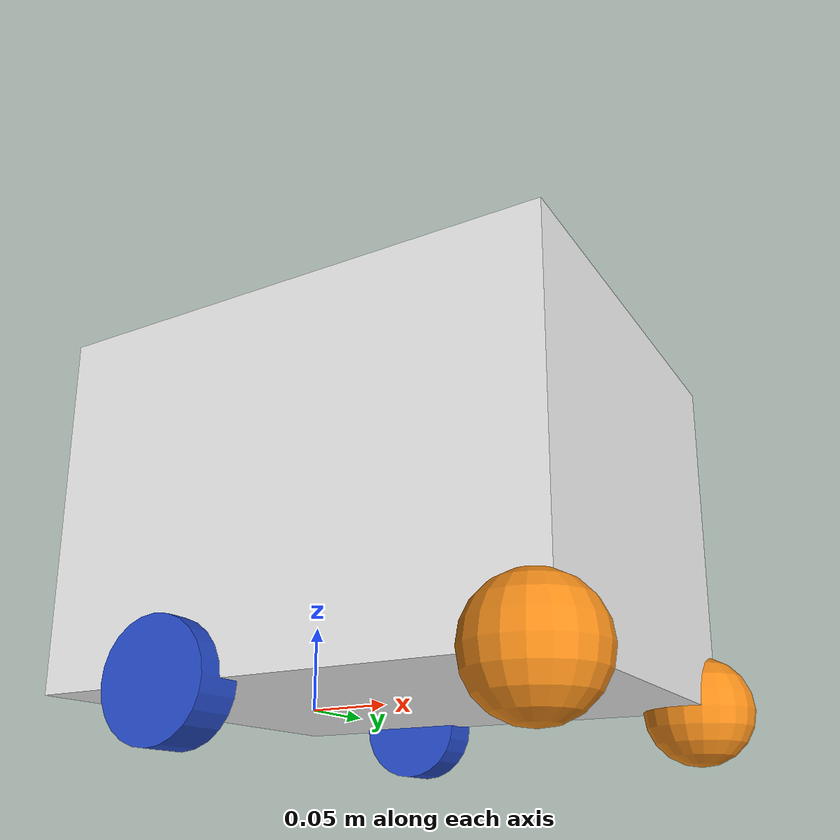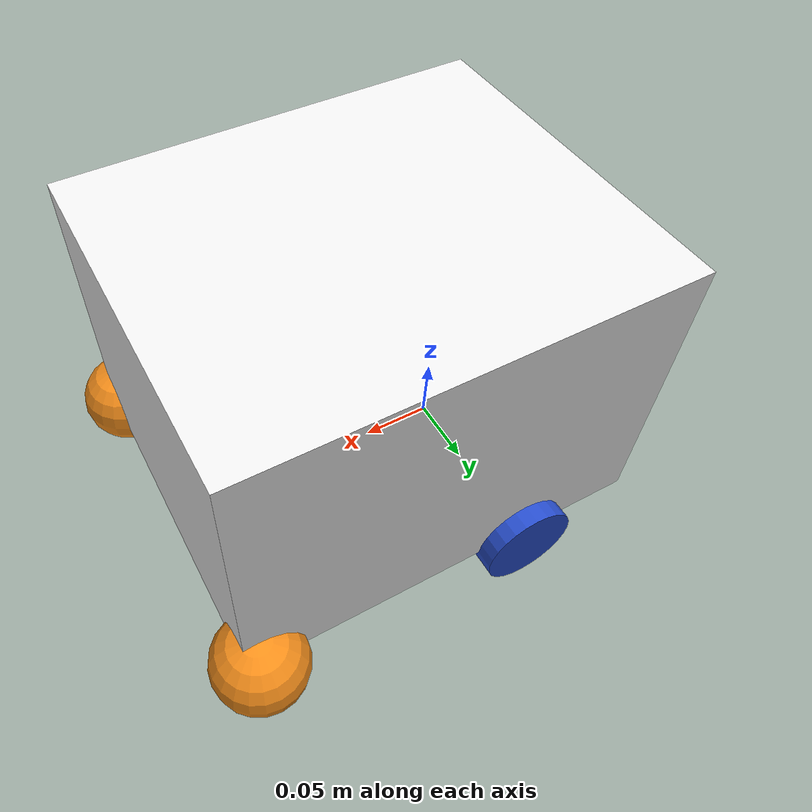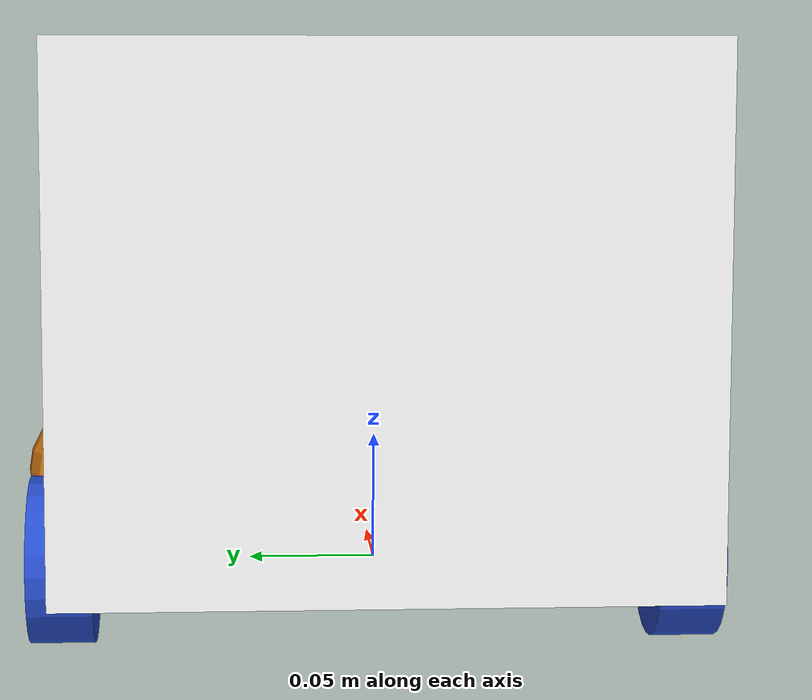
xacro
<?xml version="1.0"?>
<robot xmlns:xacro="http://www.ros.org/wiki/xacro" name="robot">
    <xacro:include filename="inertial_macro.xacro"/> <!-- Added closing tag here -->

<!-- BASE LINK -->
    <link name='base_link'>

    </link>

<!-- BASE FOOTPRINT LINK -->
    <joint name="base_footprint_joint" type="fixed">
        <parent link="base_link"/>
        <child link ="base_footprint"/>
        <origin xyz="0 0 0" ryp="0 0 0"/>
    </joint>
    <link name='base_footprint'>
    </link>

<!-- CHASSIS LINK -->
    <joint name="chassis_joint" type="fixed">
        <parent link="base_link"/>
        <child link ="chassis"/>
        <origin xyz="-0.09 0 0"/>
    </joint>

    <link name='chassis'>
        <visual>
            <origin xyz="0.15 0 0.1045"/>
            <geometry>
                <box size="0.3 0.25 0.209"/>
            </geometry>
            <material name='white'/>
        </visual>
        <collision>
            <origin xyz="0.15 0 0.1045"/>
            <geometry>
                <box size="0.3 0.25 0.209"/>
            </geometry>
        </collision>
        <xacro:inertial_box mass="1" x="0.3" y="0.25" z="0.15">
            <origin xyz="0.15 0 0.077" rpy="0 0 0"/>
        </xacro:inertial_box>
    </link>
    <gazebo reference="chassis">
        <material>Gazebo/White</material>
    </gazebo>

<!-- LEFT WHEEL LINK -->

    <joint name="left_wheel_joint" type="continuous">
        <parent link="base_link"/>
        <child link ="left_wheel"/>
        <origin xyz="0 0.125 0" rpy="${pi/2} 0 0"/>
        <axis xyz="0 0 -1"/>
    </joint>

    <link name='left_wheel'>
        <visual>
            <geometry>
                <cylinder radius="0.0335" length="0.026"/>
            </geometry>
            <material name='blue'/>
        </visual>
        <collision>
            <geometry>
                <cylinder radius="0.0335" length="0.026"/>
            </geometry>
        </collision>
        <xacro:inertial_cylinder mass="0.1" length="0.026" radius="0.0335">
            <origin xyz="0 0 0" rpy="0 0 0"/>
        </xacro:inertial_cylinder>
    </link>
    <gazebo reference="left_wheel">
        <material>Gazebo/Blue</material>
    </gazebo>

<!-- RIGHT WHEEL LINK -->
    <joint name="right_wheel_joint" type="continuous">
        <parent link="base_link"/>
        <child link ="right_wheel"/>
        <origin xyz="0 -0.125 0" rpy="-${pi/2} 0 0"/>
        <axis xyz="0 0 1"/>
    </joint>

    <link name='right_wheel'>
        <visual>
            <geometry>
                <cylinder radius="0.0335" length="0.026"/>
            </geometry>
            <material name='blue'/>
        </visual>
        <collision>
            <geometry>
                <cylinder radius="0.0335" length="0.026"/>
            </geometry>
        </collision>
        <xacro:inertial_cylinder mass="0.1" length="0.026" radius="0.0335">
            <origin xyz="0 0 0" rpy="0 0 0"/>
        </xacro:inertial_cylinder>
    </link>

    <gazebo reference="right_wheel">
        <material>Gazebo/Blue</material>
    </gazebo>

<!-- LEFT CASTER WHEEL LINK -->
    <joint name="left_caster_wheel_link" type="fixed">
        <parent link="chassis"/>
        <child link ="left_caster_wheel"/>
        <origin xyz="0.29 0.123 0"/>
    </joint>

    <link name='left_caster_wheel'>
        <visual>
            <geometry>
                <sphere radius="0.0335"/>
            </geometry>
            <material name='orange'/>
        </visual>
        <collision>
            <geometry>
                <sphere radius="0.0335"/>
            </geometry>
        </collision>
        <xacro:inertial_sphere mass="0.1" radius="0.0335">
            <origin xyz="0 0 0" rpy="0 0 0"/>
        </xacro:inertial_sphere>
    </link>
    <gazebo reference="left_caster_wheel">
        <material>Gazebo/Orange</material>
        <mu1 value="0.001"/>
        <mu2 value="0.001"/>
    </gazebo>

<!-- RIGHT CASTER WHEEL LINK -->
    <joint name="right_caster_wheel_link" type="fixed">
        <parent link="chassis"/>
        <child link ="right_caster_wheel"/>
        <origin xyz="0.29 -0.123 0"/>
    </joint>

    <link name='right_caster_wheel'>
        <visual>
            <geometry>
                <sphere radius="0.0335"/>
            </geometry>
            <material name='orange'/>
        </visual>
        <collision>
            <geometry>
                <sphere radius="0.0335"/>
            </geometry>
        </collision>
        <xacro:inertial_sphere mass="0.1" radius="0.0335">
            <origin xyz="0 0 0" rpy="0 0 0"/>
        </xacro:inertial_sphere>
    </link>

    <gazebo reference="right_caster_wheel">
        <material>Gazebo/Orange</material>
        <mu1 value="0.001"/>
        <mu2 value="0.001"/>
    </gazebo>

</robot>
